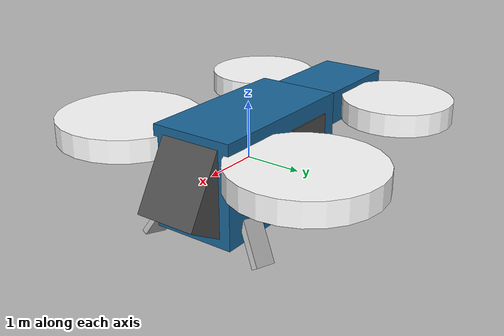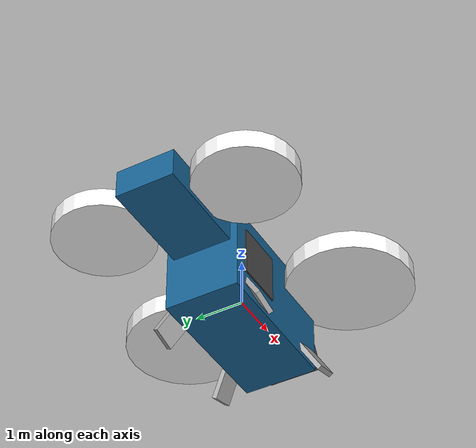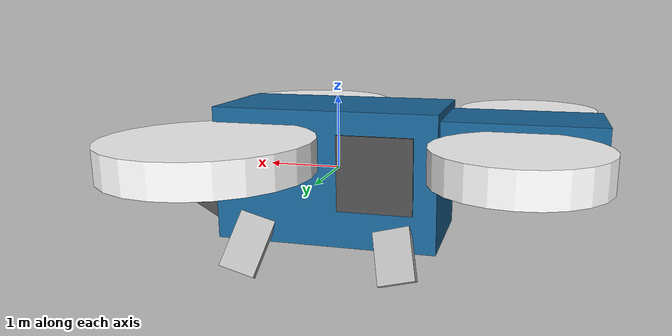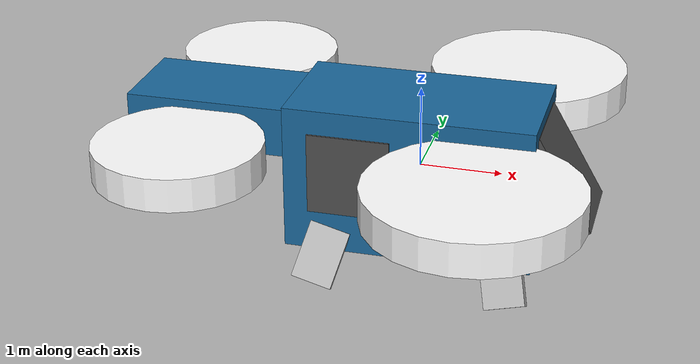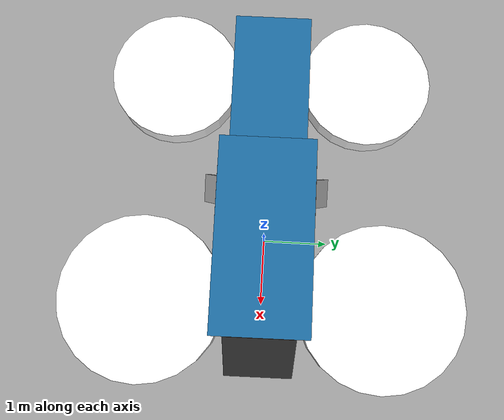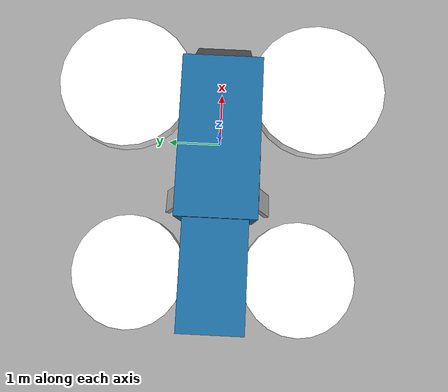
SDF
<?xml version="1.0" ?>
<sdf version="1.7">

<model name="AeroTaxi">

<static>false</static>
<plugin name="UAM_aerotaxi_cmd" filename="libUAM_aerotaxi_cmd.so">
</plugin>

<link name='dronelink'>

<visual name='cockpit'>
  <pose>1.40 0.00 -0.05 0 -0.5236 0</pose>
  <geometry>
    <box>
      <size>1.00 1.10 1.30</size>
    </box>
  </geometry>
  <material>
    <ambient>0.3 0.3 0.3 1</ambient>
    <diffuse>0.3 0.3 0.3 1</diffuse>
  </material>
</visual>
<collision name='cockpit_col'>
  <pose>1.60 0.00 -0.05 0 -0.5236 0</pose>
  <geometry>
      <box>
        <size>1.00 1.10 1.30</size>
      </box>
    </geometry>
</collision>

<sensor name='front_camera' type='camera'>
  <pose>-10.00 0.00 2.00 0 0.2 0</pose>
  <always_on>1</always_on>
  <update_rate>30</update_rate>
  <camera>
    <image>
      <width> 640</width>
      <height>480</height>
    </image>
    <horizontal_fov>2.0</horizontal_fov>
    <clip>
      <near>0.1</near>
      <far>10000</far>
    </clip>

    <save enabled="false">
      <path>/tmp/camera_save</path>
    </save>
  </camera>
</sensor>

<visual name='cabina'>
  <pose>0.00 0.00 0.00 0 0 0</pose>
  <geometry>
    <box>
      <size>3.00 1.50 1.80</size>
    </box>
  </geometry>
  <material>
    <ambient>0.1 0.4 0.6 1</ambient>
    <diffuse>0.1 0.4 0.6 1</diffuse>
  </material>
</visual>

<visual name='cabina_cristal'>
  <pose>-0.70 0.00 0.10 0 0 0</pose>
  <geometry>
    <box>
      <size>1.00 1.55 1.00</size>
    </box>
  </geometry>
  <material>
    <ambient>0.3 0.3 0.3 1</ambient>
    <diffuse>0.3 0.3 0.3 1</diffuse>
  </material>
</visual>
<collision name='cabina_col'>
  <pose>0.00 0.00 0.00 0 0 0</pose>
  <geometry>
      <box>
        <size>3.00 1.50 1.80</size>
      </box>
    </geometry>
</collision>

<visual name='legNW'>
  <pose>1.00 0.90 -0.90 0.52 -0.26 0</pose>
  <geometry>
    <box>
      <size>0.50 0.10 0.80</size>
    </box>
  </geometry>
  <material>
    <ambient>0.7 0.7 0.7 1</ambient>
    <diffuse>0.7 0.7 0.7 1</diffuse>
  </material>
</visual>
<collision name='legNW_col'>
  <pose>1.00 0.90 -0.90 0.52 -0.26 0</pose>
  <geometry>
    <box>
      <size>0.50 0.10 0.80</size>
    </box>
  </geometry>
</collision>

<visual name='legNE'>
  <pose>1.20 -0.90 -0.90 -0.52 -0.26 0</pose>
  <geometry>
    <box>
      <size>0.50 0.10 0.70</size>
    </box>
  </geometry>
  <material>
    <ambient>0.7 0.7 0.7 1</ambient>
    <diffuse>0.7 0.7 0.7 1</diffuse>
  </material>
</visual>
<collision name='legNE_col'>
  <pose>1.20 -0.90 -0.90 -0.52 -0.26 0</pose>
  <geometry>
      <box>
        <size>0.50 0.10 0.70</size>
      </box>
    </geometry>
</collision>

<visual name='legSW'>
  <pose>-1.00 0.90 -0.90 0.52 0.26 0</pose>
  <geometry>
    <box>
      <size>0.50 0.10 0.70</size>
    </box>
  </geometry>
  <material>
    <ambient>0.7 0.7 0.7 1</ambient>
    <diffuse>0.7 0.7 0.7 1</diffuse>
  </material>
</visual>
<collision name='legSW_col'>
  <pose>-1.00 0.90 -0.90 0.52 0.26 0</pose>
  <geometry>
      <box>
        <size>0.50 0.10 0.70</size>
      </box>
    </geometry>
</collision>

<visual name='legSE'>
  <pose>-1.00 -0.90 -0.90 -0.52 0.26 0</pose>
  <geometry>
    <box>
      <size>0.50 0.10 0.70</size>
    </box>
  </geometry>
  <material>
    <ambient>0.7 0.7 0.7 1</ambient>
    <diffuse>0.7 0.7 0.7 1</diffuse>
  </material>
</visual>
<collision name='legSE_col'>
  <pose>-1.00 -0.90 -0.90 -0.52 0.26 0</pose>
  <geometry>
      <box>
        <size>0.50 0.10 0.70</size>
      </box>
    </geometry>
</collision>

<visual name='cola'>
  <pose>-2.50 0.00 0.50 0 0 0</pose>
  <geometry>
    <box>
      <size>2.00 1.20 0.60</size>
    </box>
  </geometry>
  <material>
    <ambient>0.1 0.4 0.6 1</ambient>
    <diffuse>0.1 0.4 0.6 1</diffuse>
  </material>
</visual>
<collision name='cola_col'>
  <pose>-2.50 0.00 0.50 0 0 0</pose>
  <geometry>
      <box>
        <size>2.00 1.20 0.60</size>
      </box>
    </geometry>
</collision>

<visual name='rotorNW'>
  <pose>1.00 1.80 0.50 0 0 0</pose>
  <geometry>
    <cylinder>
      <radius>1.25</radius>
      <length>0.40</length>
    </cylinder>
  </geometry>
  <material>
    <ambient>1.0 1.0 1.0 1</ambient>
    <diffuse>1.0 1.0 1.0 1</diffuse>
  </material>
</visual>
<collision name='rotorNW_col'>
  <pose>1.00 1.80 0.50 0 0 0</pose>
  <geometry>
    <cylinder>
      <radius>1.25</radius>
      <length>0.40</length>
    </cylinder>
  </geometry>
</collision>

<visual name='rotorNE'>
  <pose>1.00 -1.80 0.50 0 0 0</pose>
  <geometry>
    <cylinder>
      <radius>1.25</radius>
      <length>0.40</length>
    </cylinder>
  </geometry>
  <material>
    <ambient>1.0 1.0 1.0 1</ambient>
    <diffuse>1.0 1.0 1.0 1</diffuse>
  </material>
</visual>
<collision name='rotorNE_col'>
  <pose>1.00 -1.80 0.50 0 0 0</pose>
  <geometry>
    <cylinder>
      <radius>1.25</radius>
      <length>0.40</length>
    </cylinder>
  </geometry>
</collision>

<visual name='rotorSW'>
  <pose>-2.50 1.50 0.50 0 0 0</pose>
  <geometry>
    <cylinder>
      <radius>1.00</radius>
      <length>0.40</length>
    </cylinder>
  </geometry>
  <material>
    <ambient>1.0 1.0 1.0 1</ambient>
    <diffuse>1.0 1.0 1.0 1</diffuse>
  </material>
</visual>
<collision name='rotorSW_col'>
  <pose>-2.50 1.50 0.50 0 0 0</pose>
  <geometry>
    <cylinder>
      <radius>1.00</radius>
      <length>0.40</length>
    </cylinder>
  </geometry>
</collision>

<visual name='rotorSE'>
  <pose>-2.50 -1.50 0.50 0 0 0</pose>
  <geometry>
    <cylinder>
      <radius>1.00</radius>
      <length>0.40</length>
    </cylinder>
  </geometry>
  <material>
    <ambient>1.0 1.0 1.0 1</ambient>
    <diffuse>1.0 1.0 1.0 1</diffuse>
  </material>
</visual>
<collision name='rotorSE_col'>
  <pose>-2.50 -1.50 0.50 0 0 0</pose>
  <geometry>
    <cylinder>
      <radius>1.00</radius>
      <length>0.40</length>
    </cylinder>
  </geometry>
</collision>

<inertial>

    <mass>2000</mass>

    <!-- Inercia de caja 4.0 x 2 x 1.5 m3 -->

    <inertia>                <!-- http://en.wikipedia.org/wiki/List_of_moments_of_inertia -->
      <ixx>1041.7</ixx>      for a box: ixx = 1/12 * mass * (y*y + z*z)
      <iyy>3041.7</iyy>      for a box: iyy = 1/12 * mass * (x*x + z*z)
      <izz>3333.3</izz>      for a box: izz = 1/12 * mass * (x*x + y*y)
      <ixy>0.0</ixy>
      <ixz>0.0</ixz>
      <iyz>0.0</iyz>
    </inertia>
</inertial>

</link>

</model>

</sdf>
